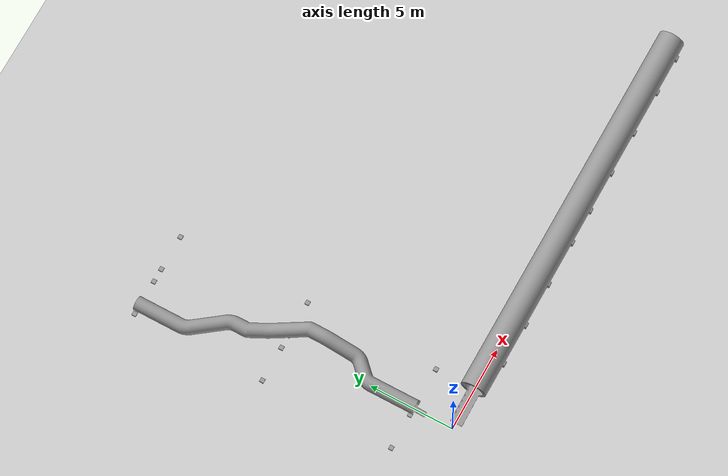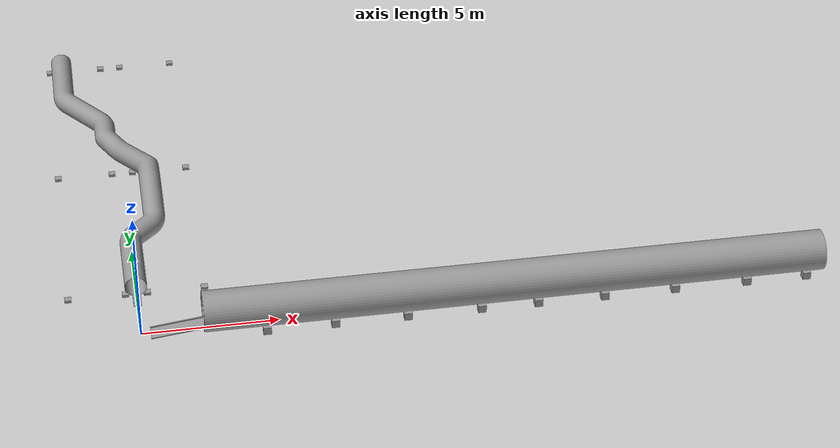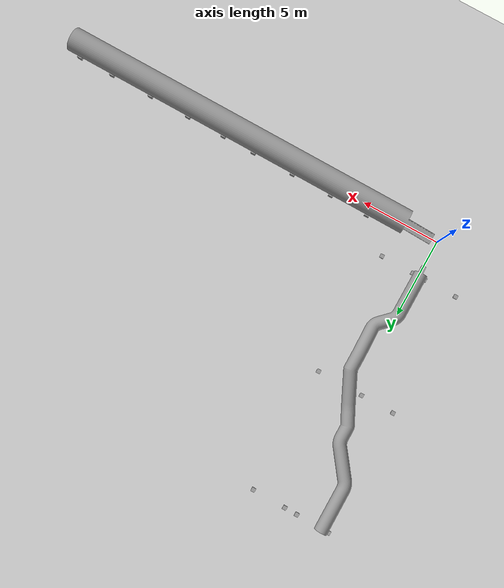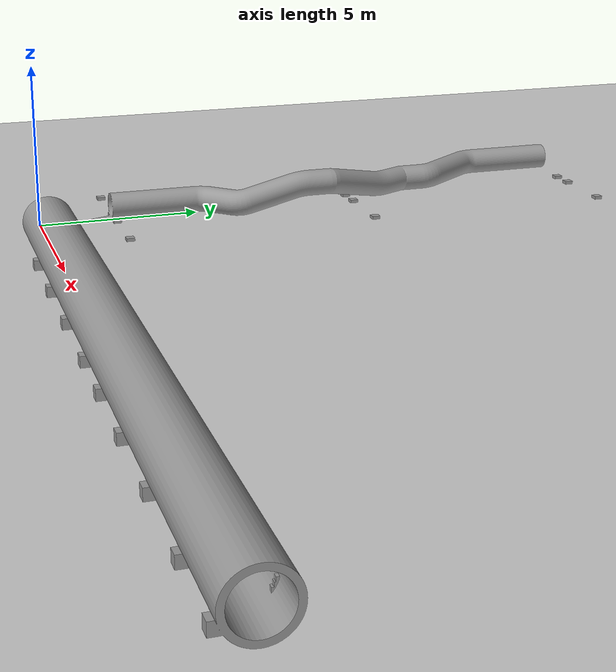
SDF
<sdf version="1.7">
 <world name="default">
  <light name="sun" type="directional">
   <pose>0 0 10 0 -0 0</pose>
   <diffuse>0.8 0.8 0.8 1</diffuse>
   <specular>0.2 0.2 0.2 1</specular>
   <attenuation>
    <range>1000</range>
    <constant>0.9</constant>
    <linear>0.01</linear>
    <quadratic>0.001</quadratic>
   </attenuation>
   <direction>-0.5 0.1 -0.9</direction>
   <spot><inner_angle>0</inner_angle><outer_angle>0</outer_angle><falloff>0</falloff></spot>
  </light>
  <model name="ground_plane">
   <static>1</static>
   <link name="link">
    <collision name="collision">
     <geometry><plane><normal>0 0 1</normal><size>100 100</size></plane></geometry>
     <surface>
      <contact><collide_bitmask>65535</collide_bitmask></contact>
      <friction><ode><mu>100</mu><mu2>50</mu2></ode></friction>
     </surface>
    </collision>
    <visual name="visual">
     <cast_shadows>0</cast_shadows>
     <geometry><plane><normal>0 0 1</normal><size>100 100</size></plane></geometry>
     <material>
      <script><uri>file://media/materials/scripts/gazebo.material</uri><name>Gazebo/Grey</name></script>
     </material>
    </visual>
   </link>
  </model>
  <gravity>0 0 -9.8</gravity>
  <magnetic_field>6e-06 2.3e-05 -4.2e-05</magnetic_field>
  <atmosphere type="adiabatic"/>
  <physics type="ode">
   <max_step_size>0.001</max_step_size>
   <real_time_factor>1</real_time_factor>
   <real_time_update_rate>1000</real_time_update_rate>
  </physics>
  <scene><ambient>0.4 0.4 0.4 1</ambient><background>0.7 0.7 0.7 1</background><shadows>1</shadows></scene>
  <audio><device>default</device></audio>
  <spherical_coordinates>
   <surface_model>EARTH_WGS84</surface_model>
   <latitude_deg>0</latitude_deg>
   <longitude_deg>0</longitude_deg>
   <elevation>0</elevation>
   <heading_deg>0</heading_deg>
  </spherical_coordinates>
  <model name="Pipe">
   <link name="link_0">
    <inertial>
     <mass>6</mass>
     <inertia><ixx>5</ixx><ixy>10</ixy><ixz>5</ixz><iyy>2000</iyy><iyz>2</iyz><izz>40</izz></inertia>
    </inertial>
    <visual name="visual">
     <geometry><mesh><uri>../meshes/Pipe.stl</uri><scale>1 1 1</scale></mesh></geometry>
     <material>
      <script><uri>file://media/materials/scripts/gazebo.material</uri><name>Gazebo/Grey</name></script>
     </material>
    </visual>
    <collision name="collision">
     <laser_retro>240</laser_retro>
     <geometry><mesh><uri>../meshes/Pipe.stl</uri><scale>1 1 1</scale></mesh></geometry>
    </collision>
   </link>
   <pose>13.427 -0.037763 -5e-06 2e-06 0 -0.000458</pose>
  </model>
  <model name="Pipe_curved">
   <link name="link_0">
    <inertial>
     <mass>10</mass>
     <inertia><ixx>283</ixx><ixy>0</ixy><ixz>0</ixz><iyy>32</iyy><iyz>0</iyz><izz>283</izz></inertia>
    </inertial>
    <pose>0 2e-06 0 0 -0 0</pose>
    <visual name="visual">
     <geometry><mesh><uri>../meshes/Pipe_curved.stl</uri><scale>1 1 1</scale></mesh></geometry>
     <material>
      <script><uri>file://media/materials/scripts/gazebo.material</uri><name>Gazebo/Grey</name></script>
     </material>
    </visual>
    <collision name="collision">
     <laser_retro>240</laser_retro>
     <geometry><mesh><uri>../meshes/Pipe_curved.stl</uri><scale>1 1 1</scale></mesh></geometry>
    </collision>
   </link>
   <static>0</static>
   <pose>-0.013689 10.23 0 0 -0 0</pose>
  </model>
 </world>
</sdf>
